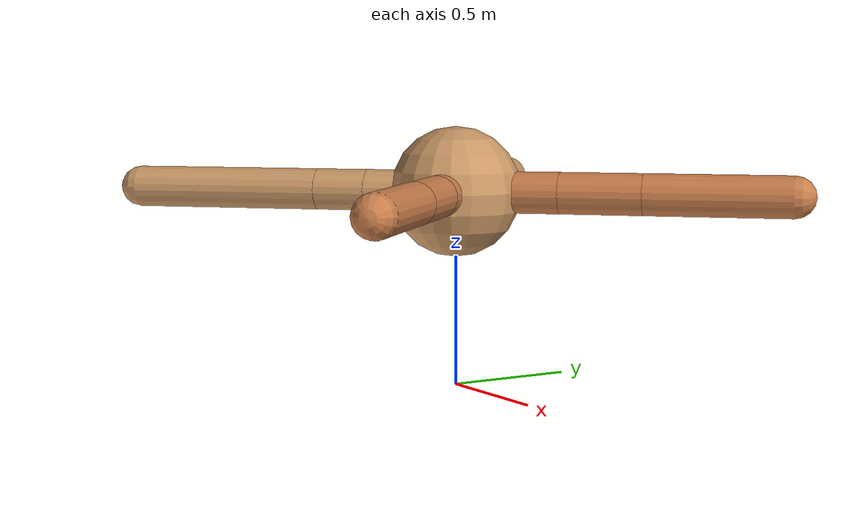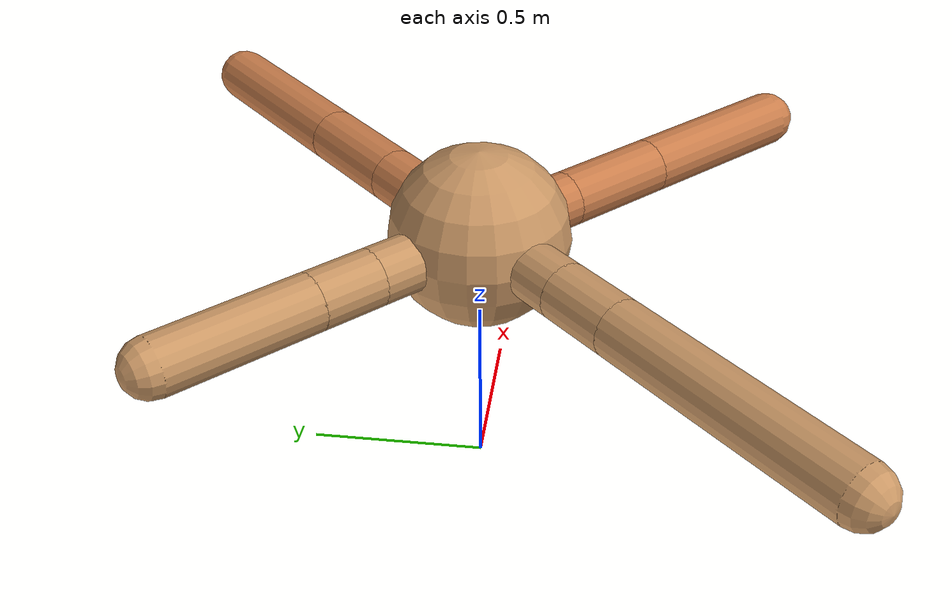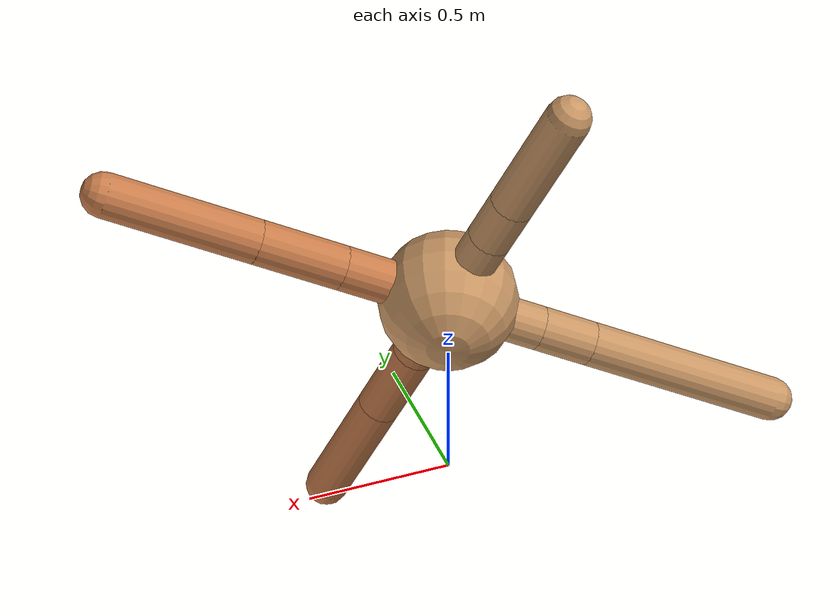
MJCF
<mujoco model="ant">
  <compiler angle="degree" coordinate="local" inertiafromgeom="true" />
  <option integrator="RK4" timestep="0.01" />
  <custom>
    <numeric data="0.0 0.0 0.55 1.0 0.0 0.0 0.0 0.0 1.0 0.0 -1.0 0.0 -1.0 0.0 1.0" name="init_qpos" />
  </custom>
  <default>
    <joint armature="1" damping="1" limited="true" />
    <geom conaffinity="0" condim="3" density="5.0" friction="1.5 0.1 0.1" margin="0.01" rgba="0.8 0.6 0.4 1" />
  </default>
  <worldbody>
    <body name="torso" pos="0 0 0.75">
      <geom name="torso_geom" pos="0 0 0" size="0.25" type="sphere" />

      <body name="front_left_leg" pos="0 0 0">
        <geom fromto="0.0 0.0 0.0 0.2859027528138917 0.2859027528138917 0.0" name="aux_1_geom" size="0.08" type="capsule" rgba=".8 .5 .3 1" />
        <body name="aux_1" pos="0.2859027528138917 0.2859027528138917 0.0">
          <joint axis="0 0 1" name="hip_1" pos="0.0 0.0 0.0" range="-40 40" type="hinge" />
          <geom fromto="0.0 0.0 0.0 0.2244535596138386 0.2244535596138386 0.0" name="left_leg_geom" size="0.08" type="capsule" rgba=".8 .5 .3 1" />
          <body pos="0.2244535596138386 0.2244535596138386 0.0" name="front_left_foot">
            <joint axis="-1 1 0" name="ankle_1" pos="0.0 0.0 0.0" range="30 100" type="hinge" />
            <geom fromto="0.0 0.0 0.0 0.39377183273629845 0.39377183273629845 0.0" name="left_ankle_geom" size="0.08" type="capsule" rgba=".8 .5 .3 1" />
          </body>
        </body>
      </body>
      <body name="front_right_leg" pos="0 0 0">
        <geom fromto="0.0 0.0 0.0 -0.24443251220356768 0.24443251220356768 0.0" name="aux_2_geom" size="0.08" type="capsule" />
        <body name="aux_2" pos="-0.24443251220356768 0.24443251220356768 0.0">
          <joint axis="0 0 1" name="hip_2" pos="0.0 0.0 0.0" range="-40 40" type="hinge" />
          <geom fromto="0.0 0.0 0.0 -0.12763222180169548 0.12763222180169548 0.0" name="right_leg_geom" size="0.08" type="capsule" />
          <body pos="-0.12763222180169548 0.12763222180169548 0.0" name="front_right_foot">
            <joint axis="1 1 0" name="ankle_2" pos="0.0 0.0 0.0" range="-100 -30" type="hinge" />
            <geom fromto="0.0 0.0 0.0 -0.3084928193972465 0.3084928193972465 0.0" name="right_ankle_geom" size="0.08" type="capsule" />
          </body>
        </body>
      </body>
      <body name="left_back_leg" pos="0 0 0">
        <geom fromto="0.0 0.0 0.0 -0.2478492912072402 -0.2478492912072402 0.0" name="aux_3_geom" size="0.08" type="capsule" />
        <body name="aux_3" pos="-0.2478492912072402 -0.2478492912072402 0.0">
          <joint axis="0 0 1" name="hip_3" pos="0.0 0.0 0.0" range="-40 40" type="hinge" />
          <geom fromto="0.0 0.0 0.0 -0.14188256333517094 -0.14188256333517094 0.0" name="back_leg_geom" size="0.08" type="capsule" />
          <body pos="-0.14188256333517094 -0.14188256333517094 0.0" name="left_back_foot">
            <joint axis="-1 1 0" name="ankle_3" pos="0.0 0.0 0.0" range="-100 -30" type="hinge" />
            <geom fromto="0.0 0.0 0.0 -0.5231999559948135 -0.5231999559948135 0.0" name="third_ankle_geom" size="0.08" type="capsule" />
          </body>
        </body>
      </body>
      <body name="right_back_leg" pos="0 0 0">
        <geom fromto="0.0 0.0 0.0 0.2148528011725612 -0.2148528011725612 0.0" name="aux_4_geom" size="0.08" type="capsule" rgba=".8 .5 .3 1" />
        <body name="aux_4" pos="0.2148528011725612 -0.2148528011725612 0.0">
          <joint axis="0 0 1" name="hip_4" pos="0.0 0.0 0.0" range="-40 40" type="hinge" />
          <geom fromto="0.0 0.0 0.0 0.22251297807802156 -0.22251297807802156 0.0" name="rightback_leg_geom" size="0.08" type="capsule" rgba=".8 .5 .3 1" />
          <body pos="0.22251297807802156 -0.22251297807802156 0.0" name="right_back_foot">
            <joint axis="1 1 0" name="ankle_4" pos="0.0 0.0 0.0" range="30 100" type="hinge" />
            <geom fromto="0.0 0.0 0.0 0.3561261027050068 -0.3561261027050068 0.0" name="fourth_ankle_geom" size="0.08" type="capsule" rgba=".8 .5 .3 1" />
          </body>
        </body>
      </body>
    </body>
  </worldbody>
  <actuator>
    <motor ctrllimited="true" ctrlrange="-1.0 1.0" joint="hip_4" gear="150" />
    <motor ctrllimited="true" ctrlrange="-1.0 1.0" joint="ankle_4" gear="150" />
    <motor ctrllimited="true" ctrlrange="-1.0 1.0" joint="hip_1" gear="150" />
    <motor ctrllimited="true" ctrlrange="-1.0 1.0" joint="ankle_1" gear="150" />
    <motor ctrllimited="true" ctrlrange="-1.0 1.0" joint="hip_2" gear="150" />
    <motor ctrllimited="true" ctrlrange="-1.0 1.0" joint="ankle_2" gear="150" />
    <motor ctrllimited="true" ctrlrange="-1.0 1.0" joint="hip_3" gear="150" />
    <motor ctrllimited="true" ctrlrange="-1.0 1.0" joint="ankle_3" gear="150" />
  </actuator>
</mujoco>
